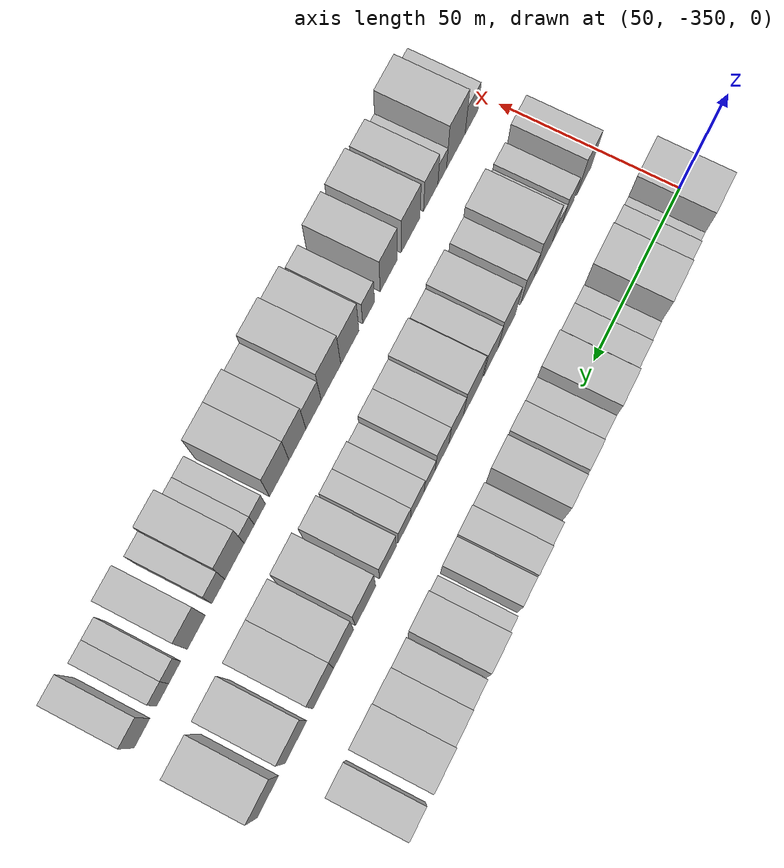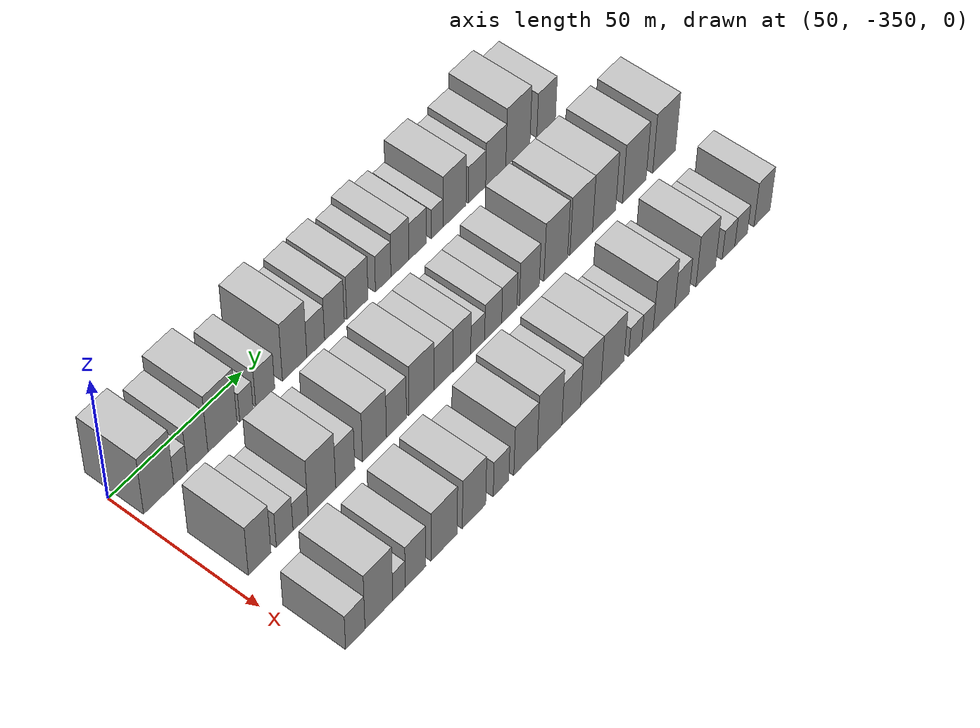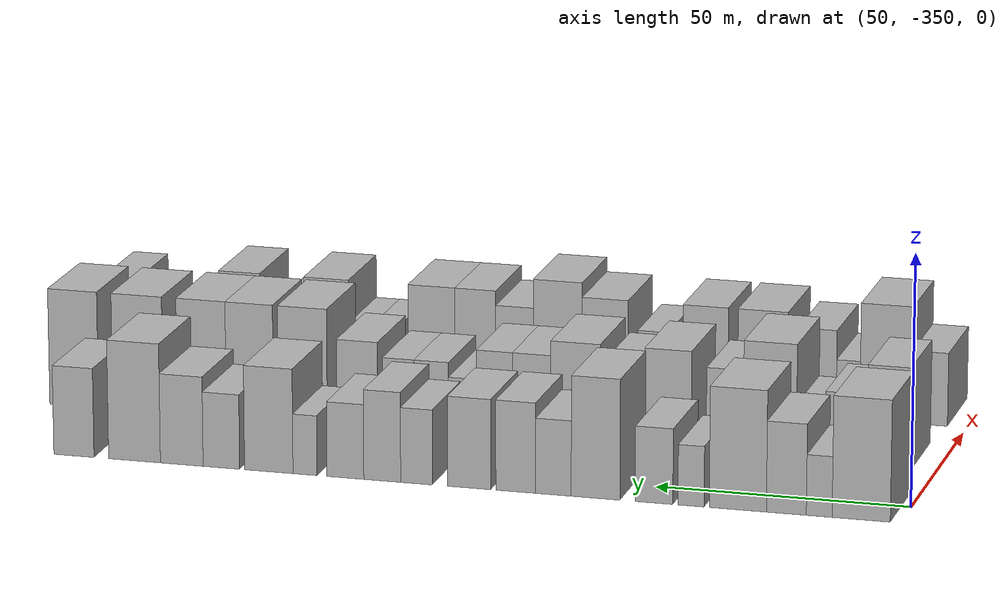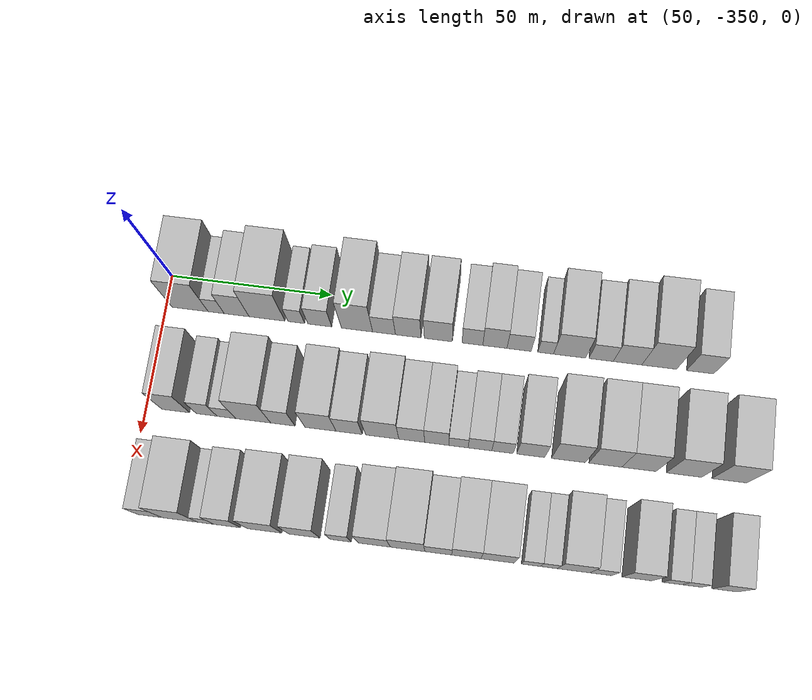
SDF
<sdf version="1.6">
 <world name="default">
  <model name="building_1">
   <static>1</static>
   <pose>50.0000 -342.3890 0 0.000000 0.000000 0.000000</pose>
   <link name="link">
    <pose>0 0 12.00 0 0 0</pose>
    <collision name="collision"><geometry><box><size>20.0000 11.2219 24.0000</size></box></geometry></collision>
    <visual name="visual">
     <cast_shadows>0</cast_shadows>
     <geometry><box><size>20.0000 11.2219 24.0000</size></box></geometry>
     <material>
      <script>
       <uri>model://HANNAS_wall/materials/scripts</uri>
       <uri>model://HANNAS_wall/materials/textures</uri>
       <name>vrc/HANNAS_wall</name>
      </script>
     </material>
    </visual>
   </link>
  </model>
  <model name="building_2">
   <static>1</static>
   <pose>50.0000 -334.2786 0 0.000000 0.000000 0.000000</pose>
   <link name="link">
    <pose>0 0 6.00 0 0 0</pose>
    <collision name="collision"><geometry><box><size>20.0000 4.9989 12.0000</size></box></geometry></collision>
    <visual name="visual">
     <cast_shadows>0</cast_shadows>
     <geometry><box><size>20.0000 4.9989 12.0000</size></box></geometry>
     <material>
      <script>
       <uri>model://HANNAS_wall/materials/scripts</uri>
       <uri>model://HANNAS_wall/materials/textures</uri>
       <name>vrc/HANNAS_wall</name>
      </script>
     </material>
    </visual>
   </link>
  </model>
  <model name="building_3">
   <static>1</static>
   <pose>50.0000 -327.9115 0 0.000000 0.000000 0.000000</pose>
   <link name="link">
    <pose>0 0 9.00 0 0 0</pose>
    <collision name="collision"><geometry><box><size>20.0000 7.7354 18.0000</size></box></geometry></collision>
    <visual name="visual">
     <cast_shadows>0</cast_shadows>
     <geometry><box><size>20.0000 7.7354 18.0000</size></box></geometry>
     <material>
      <script>
       <uri>model://HANNAS_wall/materials/scripts</uri>
       <uri>model://HANNAS_wall/materials/textures</uri>
       <name>vrc/HANNAS_wall</name>
      </script>
     </material>
    </visual>
   </link>
  </model>
  <model name="building_4">
   <static>1</static>
   <pose>50.0000 -318.4822 0 0.000000 0.000000 0.000000</pose>
   <link name="link">
    <pose>0 0 12.00 0 0 0</pose>
    <collision name="collision"><geometry><box><size>20.0000 11.1232 24.0000</size></box></geometry></collision>
    <visual name="visual">
     <cast_shadows>0</cast_shadows>
     <geometry><box><size>20.0000 11.1232 24.0000</size></box></geometry>
     <material>
      <script>
       <uri>model://HANNAS_wall/materials/scripts</uri>
       <uri>model://HANNAS_wall/materials/textures</uri>
       <name>vrc/HANNAS_wall</name>
      </script>
     </material>
    </visual>
   </link>
  </model>
  <model name="building_5">
   <static>1</static>
   <pose>50.0000 -309.3648 0 0.000000 0.000000 0.000000</pose>
   <link name="link">
    <pose>0 0 6.00 0 0 0</pose>
    <collision name="collision"><geometry><box><size>20.0000 5.1116 12.0000</size></box></geometry></collision>
    <visual name="visual">
     <cast_shadows>0</cast_shadows>
     <geometry><box><size>20.0000 5.1116 12.0000</size></box></geometry>
     <material>
      <script>
       <uri>model://HANNAS_wall/materials/scripts</uri>
       <uri>model://HANNAS_wall/materials/textures</uri>
       <name>vrc/HANNAS_wall</name>
      </script>
     </material>
    </visual>
   </link>
  </model>
  <model name="building_6">
   <static>1</static>
   <pose>50.0000 -302.1212 0 0.000000 0.000000 0.000000</pose>
   <link name="link">
    <pose>0 0 7.50 0 0 0</pose>
    <collision name="collision"><geometry><box><size>20.0000 7.3756 15.0000</size></box></geometry></collision>
    <visual name="visual">
     <cast_shadows>0</cast_shadows>
     <geometry><box><size>20.0000 7.3756 15.0000</size></box></geometry>
     <material>
      <script>
       <uri>model://HANNAS_wall/materials/scripts</uri>
       <uri>model://HANNAS_wall/materials/textures</uri>
       <name>vrc/HANNAS_wall</name>
      </script>
     </material>
    </visual>
   </link>
  </model>
  <model name="building_7">
   <static>1</static>
   <pose>50.0000 -290.6306 0 0.000000 0.000000 0.000000</pose>
   <link name="link">
    <pose>0 0 12.00 0 0 0</pose>
    <collision name="collision"><geometry><box><size>20.0000 9.6056 24.0000</size></box></geometry></collision>
    <visual name="visual">
     <cast_shadows>0</cast_shadows>
     <geometry><box><size>20.0000 9.6056 24.0000</size></box></geometry>
     <material>
      <script>
       <uri>model://HANNAS_wall/materials/scripts</uri>
       <uri>model://HANNAS_wall/materials/textures</uri>
       <name>vrc/HANNAS_wall</name>
      </script>
     </material>
    </visual>
   </link>
  </model>
  <model name="building_8">
   <static>1</static>
   <pose>50.0000 -282.3117 0 0.000000 0.000000 0.000000</pose>
   <link name="link">
    <pose>0 0 7.50 0 0 0</pose>
    <collision name="collision"><geometry><box><size>20.0000 7.0321 15.0000</size></box></geometry></collision>
    <visual name="visual">
     <cast_shadows>0</cast_shadows>
     <geometry><box><size>20.0000 7.0321 15.0000</size></box></geometry>
     <material>
      <script>
       <uri>model://HANNAS_wall/materials/scripts</uri>
       <uri>model://HANNAS_wall/materials/textures</uri>
       <name>vrc/HANNAS_wall</name>
      </script>
     </material>
    </visual>
   </link>
  </model>
  <model name="building_9">
   <static>1</static>
   <pose>50.0000 -274.8525 0 0.000000 0.000000 0.000000</pose>
   <link name="link">
    <pose>0 0 9.00 0 0 0</pose>
    <collision name="collision"><geometry><box><size>20.0000 7.8862 18.0000</size></box></geometry></collision>
    <visual name="visual">
     <cast_shadows>0</cast_shadows>
     <geometry><box><size>20.0000 7.8862 18.0000</size></box></geometry>
     <material>
      <script>
       <uri>model://HANNAS_wall/materials/scripts</uri>
       <uri>model://HANNAS_wall/materials/textures</uri>
       <name>vrc/HANNAS_wall</name>
      </script>
     </material>
    </visual>
   </link>
  </model>
  <model name="building_10">
   <static>1</static>
   <pose>50.0000 -265.6022 0 0.000000 0.000000 0.000000</pose>
   <link name="link">
    <pose>0 0 9.00 0 0 0</pose>
    <collision name="collision"><geometry><box><size>20.0000 8.6145 18.0000</size></box></geometry></collision>
    <visual name="visual">
     <cast_shadows>0</cast_shadows>
     <geometry><box><size>20.0000 8.6145 18.0000</size></box></geometry>
     <material>
      <script>
       <uri>model://HANNAS_wall/materials/scripts</uri>
       <uri>model://HANNAS_wall/materials/textures</uri>
       <name>vrc/HANNAS_wall</name>
      </script>
     </material>
    </visual>
   </link>
  </model>
  <model name="building_11">
   <static>1</static>
   <pose>50.0000 -255.1250 0 0.000000 0.000000 0.000000</pose>
   <link name="link">
    <pose>0 0 7.50 0 0 0</pose>
    <collision name="collision"><geometry><box><size>20.0000 6.3397 15.0000</size></box></geometry></collision>
    <visual name="visual">
     <cast_shadows>0</cast_shadows>
     <geometry><box><size>20.0000 6.3397 15.0000</size></box></geometry>
     <material>
      <script>
       <uri>model://HANNAS_wall/materials/scripts</uri>
       <uri>model://HANNAS_wall/materials/textures</uri>
       <name>vrc/HANNAS_wall</name>
      </script>
     </material>
    </visual>
   </link>
  </model>
  <model name="building_12">
   <static>1</static>
   <pose>50.0000 -248.2621 0 0.000000 0.000000 0.000000</pose>
   <link name="link">
    <pose>0 0 9.00 0 0 0</pose>
    <collision name="collision"><geometry><box><size>20.0000 7.3861 18.0000</size></box></geometry></collision>
    <visual name="visual">
     <cast_shadows>0</cast_shadows>
     <geometry><box><size>20.0000 7.3861 18.0000</size></box></geometry>
     <material>
      <script>
       <uri>model://HANNAS_wall/materials/scripts</uri>
       <uri>model://HANNAS_wall/materials/textures</uri>
       <name>vrc/HANNAS_wall</name>
      </script>
     </material>
    </visual>
   </link>
  </model>
  <model name="building_13">
   <static>1</static>
   <pose>50.0000 -240.8687 0 0.000000 0.000000 0.000000</pose>
   <link name="link">
    <pose>0 0 7.50 0 0 0</pose>
    <collision name="collision"><geometry><box><size>20.0000 7.4008 15.0000</size></box></geometry></collision>
    <visual name="visual">
     <cast_shadows>0</cast_shadows>
     <geometry><box><size>20.0000 7.4008 15.0000</size></box></geometry>
     <material>
      <script>
       <uri>model://HANNAS_wall/materials/scripts</uri>
       <uri>model://HANNAS_wall/materials/textures</uri>
       <name>vrc/HANNAS_wall</name>
      </script>
     </material>
    </visual>
   </link>
  </model>
  <model name="building_14">
   <static>1</static>
   <pose>50.0000 -232.7441 0 0.000000 0.000000 0.000000</pose>
   <link name="link">
    <pose>0 0 6.00 0 0 0</pose>
    <collision name="collision"><geometry><box><size>20.0000 4.8483 12.0000</size></box></geometry></collision>
    <visual name="visual">
     <cast_shadows>0</cast_shadows>
     <geometry><box><size>20.0000 4.8483 12.0000</size></box></geometry>
     <material>
      <script>
       <uri>model://HANNAS_wall/materials/scripts</uri>
       <uri>model://HANNAS_wall/materials/textures</uri>
       <name>vrc/HANNAS_wall</name>
      </script>
     </material>
    </visual>
   </link>
  </model>
  <model name="building_15">
   <static>1</static>
   <pose>50.0000 -225.4259 0 0.000000 0.000000 0.000000</pose>
   <link name="link">
    <pose>0 0 10.50 0 0 0</pose>
    <collision name="collision"><geometry><box><size>20.0000 9.7881 21.0000</size></box></geometry></collision>
    <visual name="visual">
     <cast_shadows>0</cast_shadows>
     <geometry><box><size>20.0000 9.7881 21.0000</size></box></geometry>
     <material>
      <script>
       <uri>model://HANNAS_wall/materials/scripts</uri>
       <uri>model://HANNAS_wall/materials/textures</uri>
       <name>vrc/HANNAS_wall</name>
      </script>
     </material>
    </visual>
   </link>
  </model>
  <model name="building_16">
   <static>1</static>
   <pose>50.0000 -215.8226 0 0.000000 0.000000 0.000000</pose>
   <link name="link">
    <pose>0 0 7.50 0 0 0</pose>
    <collision name="collision"><geometry><box><size>20.0000 7.4185 15.0000</size></box></geometry></collision>
    <visual name="visual">
     <cast_shadows>0</cast_shadows>
     <geometry><box><size>20.0000 7.4185 15.0000</size></box></geometry>
     <material>
      <script>
       <uri>model://HANNAS_wall/materials/scripts</uri>
       <uri>model://HANNAS_wall/materials/textures</uri>
       <name>vrc/HANNAS_wall</name>
      </script>
     </material>
    </visual>
   </link>
  </model>
  <model name="building_17">
   <static>1</static>
   <pose>50.0000 -207.7603 0 0.000000 0.000000 0.000000</pose>
   <link name="link">
    <pose>0 0 9.00 0 0 0</pose>
    <collision name="collision"><geometry><box><size>20.0000 8.7060 18.0000</size></box></geometry></collision>
    <visual name="visual">
     <cast_shadows>0</cast_shadows>
     <geometry><box><size>20.0000 8.7060 18.0000</size></box></geometry>
     <material>
      <script>
       <uri>model://HANNAS_wall/materials/scripts</uri>
       <uri>model://HANNAS_wall/materials/textures</uri>
       <name>vrc/HANNAS_wall</name>
      </script>
     </material>
    </visual>
   </link>
  </model>
  <model name="building_18">
   <static>1</static>
   <pose>50.0000 -198.1202 0 0.000000 0.000000 0.000000</pose>
   <link name="link">
    <pose>0 0 12.00 0 0 0</pose>
    <collision name="collision"><geometry><box><size>20.0000 10.5743 24.0000</size></box></geometry></collision>
    <visual name="visual">
     <cast_shadows>0</cast_shadows>
     <geometry><box><size>20.0000 10.5743 24.0000</size></box></geometry>
     <material>
      <script>
       <uri>model://HANNAS_wall/materials/scripts</uri>
       <uri>model://HANNAS_wall/materials/textures</uri>
       <name>vrc/HANNAS_wall</name>
      </script>
     </material>
    </visual>
   </link>
  </model>
  <model name="building_19">
   <static>1</static>
   <pose>50.0000 -185.7097 0 0.000000 0.000000 0.000000</pose>
   <link name="link">
    <pose>0 0 9.00 0 0 0</pose>
    <collision name="collision"><geometry><box><size>20.0000 8.2468 18.0000</size></box></geometry></collision>
    <visual name="visual">
     <cast_shadows>0</cast_shadows>
     <geometry><box><size>20.0000 8.2468 18.0000</size></box></geometry>
     <material>
      <script>
       <uri>model://HANNAS_wall/materials/scripts</uri>
       <uri>model://HANNAS_wall/materials/textures</uri>
       <name>vrc/HANNAS_wall</name>
      </script>
     </material>
    </visual>
   </link>
  </model>
  <model name="building_81">
   <static>1</static>
   <pose>82.0000 -340.7954 0 0.000000 0.000000 0.000000</pose>
   <link name="link">
    <pose>0 0 10.50 0 0 0</pose>
    <collision name="collision"><geometry><box><size>20.0000 8.4092 21.0000</size></box></geometry></collision>
    <visual name="visual">
     <cast_shadows>0</cast_shadows>
     <geometry><box><size>20.0000 8.4092 21.0000</size></box></geometry>
     <material>
      <script>
       <uri>model://HANNAS_wall/materials/scripts</uri>
       <uri>model://HANNAS_wall/materials/textures</uri>
       <name>vrc/HANNAS_wall</name>
      </script>
     </material>
    </visual>
   </link>
  </model>
  <model name="building_82">
   <static>1</static>
   <pose>82.0000 -331.4395 0 0.000000 0.000000 0.000000</pose>
   <link name="link">
    <pose>0 0 7.50 0 0 0</pose>
    <collision name="collision"><geometry><box><size>20.0000 6.3026 15.0000</size></box></geometry></collision>
    <visual name="visual">
     <cast_shadows>0</cast_shadows>
     <geometry><box><size>20.0000 6.3026 15.0000</size></box></geometry>
     <material>
      <script>
       <uri>model://HANNAS_wall/materials/scripts</uri>
       <uri>model://HANNAS_wall/materials/textures</uri>
       <name>vrc/HANNAS_wall</name>
      </script>
     </material>
    </visual>
   </link>
  </model>
  <model name="building_83">
   <static>1</static>
   <pose>82.0000 -325.4299 0 0.000000 0.000000 0.000000</pose>
   <link name="link">
    <pose>0 0 6.00 0 0 0</pose>
    <collision name="collision"><geometry><box><size>20.0000 5.7168 12.0000</size></box></geometry></collision>
    <visual name="visual">
     <cast_shadows>0</cast_shadows>
     <geometry><box><size>20.0000 5.7168 12.0000</size></box></geometry>
     <material>
      <script>
       <uri>model://HANNAS_wall/materials/scripts</uri>
       <uri>model://HANNAS_wall/materials/textures</uri>
       <name>vrc/HANNAS_wall</name>
      </script>
     </material>
    </visual>
   </link>
  </model>
  <model name="building_84">
   <static>1</static>
   <pose>82.0000 -317.2761 0 0.000000 0.000000 0.000000</pose>
   <link name="link">
    <pose>0 0 12.00 0 0 0</pose>
    <collision name="collision"><geometry><box><size>20.0000 10.5909 24.0000</size></box></geometry></collision>
    <visual name="visual">
     <cast_shadows>0</cast_shadows>
     <geometry><box><size>20.0000 10.5909 24.0000</size></box></geometry>
     <material>
      <script>
       <uri>model://HANNAS_wall/materials/scripts</uri>
       <uri>model://HANNAS_wall/materials/textures</uri>
       <name>vrc/HANNAS_wall</name>
      </script>
     </material>
    </visual>
   </link>
  </model>
  <model name="building_85">
   <static>1</static>
   <pose>82.0000 -308.2951 0 0.000000 0.000000 0.000000</pose>
   <link name="link">
    <pose>0 0 9.00 0 0 0</pose>
    <collision name="collision"><geometry><box><size>20.0000 7.3710 18.0000</size></box></geometry></collision>
    <visual name="visual">
     <cast_shadows>0</cast_shadows>
     <geometry><box><size>20.0000 7.3710 18.0000</size></box></geometry>
     <material>
      <script>
       <uri>model://HANNAS_wall/materials/scripts</uri>
       <uri>model://HANNAS_wall/materials/textures</uri>
       <name>vrc/HANNAS_wall</name>
      </script>
     </material>
    </visual>
   </link>
  </model>
  <model name="building_86">
   <static>1</static>
   <pose>82.0000 -296.9072 0 0.000000 0.000000 0.000000</pose>
   <link name="link">
    <pose>0 0 10.50 0 0 0</pose>
    <collision name="collision"><geometry><box><size>20.0000 9.4048 21.0000</size></box></geometry></collision>
    <visual name="visual">
     <cast_shadows>0</cast_shadows>
     <geometry><box><size>20.0000 9.4048 21.0000</size></box></geometry>
     <material>
      <script>
       <uri>model://HANNAS_wall/materials/scripts</uri>
       <uri>model://HANNAS_wall/materials/textures</uri>
       <name>vrc/HANNAS_wall</name>
      </script>
     </material>
    </visual>
   </link>
  </model>
  <model name="building_87">
   <static>1</static>
   <pose>82.0000 -288.2437 0 0.000000 0.000000 0.000000</pose>
   <link name="link">
    <pose>0 0 9.00 0 0 0</pose>
    <collision name="collision"><geometry><box><size>20.0000 7.9222 18.0000</size></box></geometry></collision>
    <visual name="visual">
     <cast_shadows>0</cast_shadows>
     <geometry><box><size>20.0000 7.9222 18.0000</size></box></geometry>
     <material>
      <script>
       <uri>model://HANNAS_wall/materials/scripts</uri>
       <uri>model://HANNAS_wall/materials/textures</uri>
       <name>vrc/HANNAS_wall</name>
      </script>
     </material>
    </visual>
   </link>
  </model>
  <model name="building_88">
   <static>1</static>
   <pose>82.0000 -278.2958 0 0.000000 0.000000 0.000000</pose>
   <link name="link">
    <pose>0 0 10.50 0 0 0</pose>
    <collision name="collision"><geometry><box><size>20.0000 9.9735 21.0000</size></box></geometry></collision>
    <visual name="visual">
     <cast_shadows>0</cast_shadows>
     <geometry><box><size>20.0000 9.9735 21.0000</size></box></geometry>
     <material>
      <script>
       <uri>model://HANNAS_wall/materials/scripts</uri>
       <uri>model://HANNAS_wall/materials/textures</uri>
       <name>vrc/HANNAS_wall</name>
      </script>
     </material>
    </visual>
   </link>
  </model>
  <model name="building_89">
   <static>1</static>
   <pose>82.0000 -269.4172 0 0.000000 0.000000 0.000000</pose>
   <link name="link">
    <pose>0 0 9.00 0 0 0</pose>
    <collision name="collision"><geometry><box><size>20.0000 7.7837 18.0000</size></box></geometry></collision>
    <visual name="visual">
     <cast_shadows>0</cast_shadows>
     <geometry><box><size>20.0000 7.7837 18.0000</size></box></geometry>
     <material>
      <script>
       <uri>model://HANNAS_wall/materials/scripts</uri>
       <uri>model://HANNAS_wall/materials/textures</uri>
       <name>vrc/HANNAS_wall</name>
      </script>
     </material>
    </visual>
   </link>
  </model>
  <model name="building_90">
   <static>1</static>
   <pose>82.0000 -261.8972 0 0.000000 0.000000 0.000000</pose>
   <link name="link">
    <pose>0 0 9.00 0 0 0</pose>
    <collision name="collision"><geometry><box><size>20.0000 7.2563 18.0000</size></box></geometry></collision>
    <visual name="visual">
     <cast_shadows>0</cast_shadows>
     <geometry><box><size>20.0000 7.2563 18.0000</size></box></geometry>
     <material>
      <script>
       <uri>model://HANNAS_wall/materials/scripts</uri>
       <uri>model://HANNAS_wall/materials/textures</uri>
       <name>vrc/HANNAS_wall</name>
      </script>
     </material>
    </visual>
   </link>
  </model>
  <model name="building_91">
   <static>1</static>
   <pose>82.0000 -255.4014 0 0.000000 0.000000 0.000000</pose>
   <link name="link">
    <pose>0 0 6.00 0 0 0</pose>
    <collision name="collision"><geometry><box><size>20.0000 5.7352 12.0000</size></box></geometry></collision>
    <visual name="visual">
     <cast_shadows>0</cast_shadows>
     <geometry><box><size>20.0000 5.7352 12.0000</size></box></geometry>
     <material>
      <script>
       <uri>model://HANNAS_wall/materials/scripts</uri>
       <uri>model://HANNAS_wall/materials/textures</uri>
       <name>vrc/HANNAS_wall</name>
      </script>
     </material>
    </visual>
   </link>
  </model>
  <model name="building_92">
   <static>1</static>
   <pose>82.0000 -248.9934 0 0.000000 0.000000 0.000000</pose>
   <link name="link">
    <pose>0 0 7.50 0 0 0</pose>
    <collision name="collision"><geometry><box><size>20.0000 7.0808 15.0000</size></box></geometry></collision>
    <visual name="visual">
     <cast_shadows>0</cast_shadows>
     <geometry><box><size>20.0000 7.0808 15.0000</size></box></geometry>
     <material>
      <script>
       <uri>model://HANNAS_wall/materials/scripts</uri>
       <uri>model://HANNAS_wall/materials/textures</uri>
       <name>vrc/HANNAS_wall</name>
      </script>
     </material>
    </visual>
   </link>
  </model>
  <model name="building_93">
   <static>1</static>
   <pose>82.0000 -242.2423 0 0.000000 0.000000 0.000000</pose>
   <link name="link">
    <pose>0 0 7.50 0 0 0</pose>
    <collision name="collision"><geometry><box><size>20.0000 6.4214 15.0000</size></box></geometry></collision>
    <visual name="visual">
     <cast_shadows>0</cast_shadows>
     <geometry><box><size>20.0000 6.4214 15.0000</size></box></geometry>
     <material>
      <script>
       <uri>model://HANNAS_wall/materials/scripts</uri>
       <uri>model://HANNAS_wall/materials/textures</uri>
       <name>vrc/HANNAS_wall</name>
      </script>
     </material>
    </visual>
   </link>
  </model>
  <model name="building_94">
   <static>1</static>
   <pose>82.0000 -233.8269 0 0.000000 0.000000 0.000000</pose>
   <link name="link">
    <pose>0 0 9.00 0 0 0</pose>
    <collision name="collision"><geometry><box><size>20.0000 8.4095 18.0000</size></box></geometry></collision>
    <visual name="visual">
     <cast_shadows>0</cast_shadows>
     <geometry><box><size>20.0000 8.4095 18.0000</size></box></geometry>
     <material>
      <script>
       <uri>model://HANNAS_wall/materials/scripts</uri>
       <uri>model://HANNAS_wall/materials/textures</uri>
       <name>vrc/HANNAS_wall</name>
      </script>
     </material>
    </visual>
   </link>
  </model>
  <model name="building_95">
   <static>1</static>
   <pose>82.0000 -222.5557 0 0.000000 0.000000 0.000000</pose>
   <link name="link">
    <pose>0 0 12.00 0 0 0</pose>
    <collision name="collision"><geometry><box><size>20.0000 10.1330 24.0000</size></box></geometry></collision>
    <visual name="visual">
     <cast_shadows>0</cast_shadows>
     <geometry><box><size>20.0000 10.1330 24.0000</size></box></geometry>
     <material>
      <script>
       <uri>model://HANNAS_wall/materials/scripts</uri>
       <uri>model://HANNAS_wall/materials/textures</uri>
       <name>vrc/HANNAS_wall</name>
      </script>
     </material>
    </visual>
   </link>
  </model>
  <model name="building_96">
   <static>1</static>
   <pose>82.0000 -211.5817 0 0.000000 0.000000 0.000000</pose>
   <link name="link">
    <pose>0 0 12.00 0 0 0</pose>
    <collision name="collision"><geometry><box><size>20.0000 9.8149 24.0000</size></box></geometry></collision>
    <visual name="visual">
     <cast_shadows>0</cast_shadows>
     <geometry><box><size>20.0000 9.8149 24.0000</size></box></geometry>
     <material>
      <script>
       <uri>model://HANNAS_wall/materials/scripts</uri>
       <uri>model://HANNAS_wall/materials/textures</uri>
       <name>vrc/HANNAS_wall</name>
      </script>
     </material>
    </visual>
   </link>
  </model>
  <model name="building_97">
   <static>1</static>
   <pose>82.0000 -201.5787 0 0.000000 0.000000 0.000000</pose>
   <link name="link">
    <pose>0 0 12.00 0 0 0</pose>
    <collision name="collision"><geometry><box><size>20.0000 10.1910 24.0000</size></box></geometry></collision>
    <visual name="visual">
     <cast_shadows>0</cast_shadows>
     <geometry><box><size>20.0000 10.1910 24.0000</size></box></geometry>
     <material>
      <script>
       <uri>model://HANNAS_wall/materials/scripts</uri>
       <uri>model://HANNAS_wall/materials/textures</uri>
       <name>vrc/HANNAS_wall</name>
      </script>
     </material>
    </visual>
   </link>
  </model>
  <model name="building_98">
   <static>1</static>
   <pose>82.0000 -188.2115 0 0.000000 0.000000 0.000000</pose>
   <link name="link">
    <pose>0 0 12.00 0 0 0</pose>
    <collision name="collision"><geometry><box><size>20.0000 10.5436 24.0000</size></box></geometry></collision>
    <visual name="visual">
     <cast_shadows>0</cast_shadows>
     <geometry><box><size>20.0000 10.5436 24.0000</size></box></geometry>
     <material>
      <script>
       <uri>model://HANNAS_wall/materials/scripts</uri>
       <uri>model://HANNAS_wall/materials/textures</uri>
       <name>vrc/HANNAS_wall</name>
      </script>
     </material>
    </visual>
   </link>
  </model>
  <model name="building_99">
   <static>1</static>
   <pose>82.0000 -174.8067 0 0.000000 0.000000 0.000000</pose>
   <link name="link">
    <pose>0 0 12.00 0 0 0</pose>
    <collision name="collision"><geometry><box><size>20.0000 10.2660 24.0000</size></box></geometry></collision>
    <visual name="visual">
     <cast_shadows>0</cast_shadows>
     <geometry><box><size>20.0000 10.2660 24.0000</size></box></geometry>
     <material>
      <script>
       <uri>model://HANNAS_wall/materials/scripts</uri>
       <uri>model://HANNAS_wall/materials/textures</uri>
       <name>vrc/HANNAS_wall</name>
      </script>
     </material>
    </visual>
   </link>
  </model>
  <model name="building_157">
   <static>1</static>
   <pose>114.0000 -342.3721 0 0.000000 0.000000 0.000000</pose>
   <link name="link">
    <pose>0 0 7.50 0 0 0</pose>
    <collision name="collision"><geometry><box><size>20.0000 7.2557 15.0000</size></box></geometry></collision>
    <visual name="visual">
     <cast_shadows>0</cast_shadows>
     <geometry><box><size>20.0000 7.2557 15.0000</size></box></geometry>
     <material>
      <script>
       <uri>model://HANNAS_wall/materials/scripts</uri>
       <uri>model://HANNAS_wall/materials/textures</uri>
       <name>vrc/HANNAS_wall</name>
      </script>
     </material>
    </visual>
   </link>
  </model>
  <model name="building_158">
   <static>1</static>
   <pose>114.0000 -333.5051 0 0.000000 0.000000 0.000000</pose>
   <link name="link">
    <pose>0 0 12.00 0 0 0</pose>
    <collision name="collision"><geometry><box><size>20.0000 10.4784 24.0000</size></box></geometry></collision>
    <visual name="visual">
     <cast_shadows>0</cast_shadows>
     <geometry><box><size>20.0000 10.4784 24.0000</size></box></geometry>
     <material>
      <script>
       <uri>model://HANNAS_wall/materials/scripts</uri>
       <uri>model://HANNAS_wall/materials/textures</uri>
       <name>vrc/HANNAS_wall</name>
      </script>
     </material>
    </visual>
   </link>
  </model>
  <model name="building_159">
   <static>1</static>
   <pose>114.0000 -325.8617 0 0.000000 0.000000 0.000000</pose>
   <link name="link">
    <pose>0 0 6.00 0 0 0</pose>
    <collision name="collision"><geometry><box><size>20.0000 4.8084 12.0000</size></box></geometry></collision>
    <visual name="visual">
     <cast_shadows>0</cast_shadows>
     <geometry><box><size>20.0000 4.8084 12.0000</size></box></geometry>
     <material>
      <script>
       <uri>model://HANNAS_wall/materials/scripts</uri>
       <uri>model://HANNAS_wall/materials/textures</uri>
       <name>vrc/HANNAS_wall</name>
      </script>
     </material>
    </visual>
   </link>
  </model>
  <model name="building_160">
   <static>1</static>
   <pose>114.0000 -319.4997 0 0.000000 0.000000 0.000000</pose>
   <link name="link">
    <pose>0 0 9.00 0 0 0</pose>
    <collision name="collision"><geometry><box><size>20.0000 7.9158 18.0000</size></box></geometry></collision>
    <visual name="visual">
     <cast_shadows>0</cast_shadows>
     <geometry><box><size>20.0000 7.9158 18.0000</size></box></geometry>
     <material>
      <script>
       <uri>model://HANNAS_wall/materials/scripts</uri>
       <uri>model://HANNAS_wall/materials/textures</uri>
       <name>vrc/HANNAS_wall</name>
      </script>
     </material>
    </visual>
   </link>
  </model>
  <model name="building_161">
   <static>1</static>
   <pose>114.0000 -308.4448 0 0.000000 0.000000 0.000000</pose>
   <link name="link">
    <pose>0 0 10.50 0 0 0</pose>
    <collision name="collision"><geometry><box><size>20.0000 10.1939 21.0000</size></box></geometry></collision>
    <visual name="visual">
     <cast_shadows>0</cast_shadows>
     <geometry><box><size>20.0000 10.1939 21.0000</size></box></geometry>
     <material>
      <script>
       <uri>model://HANNAS_wall/materials/scripts</uri>
       <uri>model://HANNAS_wall/materials/textures</uri>
       <name>vrc/HANNAS_wall</name>
      </script>
     </material>
    </visual>
   </link>
  </model>
  <model name="building_162">
   <static>1</static>
   <pose>114.0000 -296.7150 0 0.000000 0.000000 0.000000</pose>
   <link name="link">
    <pose>0 0 10.50 0 0 0</pose>
    <collision name="collision"><geometry><box><size>20.0000 9.2657 21.0000</size></box></geometry></collision>
    <visual name="visual">
     <cast_shadows>0</cast_shadows>
     <geometry><box><size>20.0000 9.2657 21.0000</size></box></geometry>
     <material>
      <script>
       <uri>model://HANNAS_wall/materials/scripts</uri>
       <uri>model://HANNAS_wall/materials/textures</uri>
       <name>vrc/HANNAS_wall</name>
      </script>
     </material>
    </visual>
   </link>
  </model>
  <model name="building_163">
   <static>1</static>
   <pose>114.0000 -285.9590 0 0.000000 0.000000 0.000000</pose>
   <link name="link">
    <pose>0 0 7.50 0 0 0</pose>
    <collision name="collision"><geometry><box><size>20.0000 6.2463 15.0000</size></box></geometry></collision>
    <visual name="visual">
     <cast_shadows>0</cast_shadows>
     <geometry><box><size>20.0000 6.2463 15.0000</size></box></geometry>
     <material>
      <script>
       <uri>model://HANNAS_wall/materials/scripts</uri>
       <uri>model://HANNAS_wall/materials/textures</uri>
       <name>vrc/HANNAS_wall</name>
      </script>
     </material>
    </visual>
   </link>
  </model>
  <model name="building_164">
   <static>1</static>
   <pose>114.0000 -276.0854 0 0.000000 0.000000 0.000000</pose>
   <link name="link">
    <pose>0 0 10.50 0 0 0</pose>
    <collision name="collision"><geometry><box><size>20.0000 9.5008 21.0000</size></box></geometry></collision>
    <visual name="visual">
     <cast_shadows>0</cast_shadows>
     <geometry><box><size>20.0000 9.5008 21.0000</size></box></geometry>
     <material>
      <script>
       <uri>model://HANNAS_wall/materials/scripts</uri>
       <uri>model://HANNAS_wall/materials/textures</uri>
       <name>vrc/HANNAS_wall</name>
      </script>
     </material>
    </visual>
   </link>
  </model>
  <model name="building_165">
   <static>1</static>
   <pose>114.0000 -266.2824 0 0.000000 0.000000 0.000000</pose>
   <link name="link">
    <pose>0 0 12.00 0 0 0</pose>
    <collision name="collision"><geometry><box><size>20.0000 10.1050 24.0000</size></box></geometry></collision>
    <visual name="visual">
     <cast_shadows>0</cast_shadows>
     <geometry><box><size>20.0000 10.1050 24.0000</size></box></geometry>
     <material>
      <script>
       <uri>model://HANNAS_wall/materials/scripts</uri>
       <uri>model://HANNAS_wall/materials/textures</uri>
       <name>vrc/HANNAS_wall</name>
      </script>
     </material>
    </visual>
   </link>
  </model>
  <model name="building_166">
   <static>1</static>
   <pose>114.0000 -257.3146 0 0.000000 0.000000 0.000000</pose>
   <link name="link">
    <pose>0 0 9.00 0 0 0</pose>
    <collision name="collision"><geometry><box><size>20.0000 7.8306 18.0000</size></box></geometry></collision>
    <visual name="visual">
     <cast_shadows>0</cast_shadows>
     <geometry><box><size>20.0000 7.8306 18.0000</size></box></geometry>
     <material>
      <script>
       <uri>model://HANNAS_wall/materials/scripts</uri>
       <uri>model://HANNAS_wall/materials/textures</uri>
       <name>vrc/HANNAS_wall</name>
      </script>
     </material>
    </visual>
   </link>
  </model>
  <model name="building_167">
   <static>1</static>
   <pose>114.0000 -249.1330 0 0.000000 0.000000 0.000000</pose>
   <link name="link">
    <pose>0 0 10.50 0 0 0</pose>
    <collision name="collision"><geometry><box><size>20.0000 8.5327 21.0000</size></box></geometry></collision>
    <visual name="visual">
     <cast_shadows>0</cast_shadows>
     <geometry><box><size>20.0000 8.5327 21.0000</size></box></geometry>
     <material>
      <script>
       <uri>model://HANNAS_wall/materials/scripts</uri>
       <uri>model://HANNAS_wall/materials/textures</uri>
       <name>vrc/HANNAS_wall</name>
      </script>
     </material>
    </visual>
   </link>
  </model>
  <model name="building_168">
   <static>1</static>
   <pose>114.0000 -239.9743 0 0.000000 0.000000 0.000000</pose>
   <link name="link">
    <pose>0 0 10.50 0 0 0</pose>
    <collision name="collision"><geometry><box><size>20.0000 9.7846 21.0000</size></box></geometry></collision>
    <visual name="visual">
     <cast_shadows>0</cast_shadows>
     <geometry><box><size>20.0000 9.7846 21.0000</size></box></geometry>
     <material>
      <script>
       <uri>model://HANNAS_wall/materials/scripts</uri>
       <uri>model://HANNAS_wall/materials/textures</uri>
       <name>vrc/HANNAS_wall</name>
      </script>
     </material>
    </visual>
   </link>
  </model>
  <model name="building_169">
   <static>1</static>
   <pose>114.0000 -230.3144 0 0.000000 0.000000 0.000000</pose>
   <link name="link">
    <pose>0 0 6.00 0 0 0</pose>
    <collision name="collision"><geometry><box><size>20.0000 5.5351 12.0000</size></box></geometry></collision>
    <visual name="visual">
     <cast_shadows>0</cast_shadows>
     <geometry><box><size>20.0000 5.5351 12.0000</size></box></geometry>
     <material>
      <script>
       <uri>model://HANNAS_wall/materials/scripts</uri>
       <uri>model://HANNAS_wall/materials/textures</uri>
       <name>vrc/HANNAS_wall</name>
      </script>
     </material>
    </visual>
   </link>
  </model>
  <model name="building_170">
   <static>1</static>
   <pose>114.0000 -225.0647 0 0.000000 0.000000 0.000000</pose>
   <link name="link">
    <pose>0 0 6.00 0 0 0</pose>
    <collision name="collision"><geometry><box><size>20.0000 4.9644 12.0000</size></box></geometry></collision>
    <visual name="visual">
     <cast_shadows>0</cast_shadows>
     <geometry><box><size>20.0000 4.9644 12.0000</size></box></geometry>
     <material>
      <script>
       <uri>model://HANNAS_wall/materials/scripts</uri>
       <uri>model://HANNAS_wall/materials/textures</uri>
       <name>vrc/HANNAS_wall</name>
      </script>
     </material>
    </visual>
   </link>
  </model>
  <model name="building_171">
   <static>1</static>
   <pose>114.0000 -217.8764 0 0.000000 0.000000 0.000000</pose>
   <link name="link">
    <pose>0 0 10.50 0 0 0</pose>
    <collision name="collision"><geometry><box><size>20.0000 9.4121 21.0000</size></box></geometry></collision>
    <visual name="visual">
     <cast_shadows>0</cast_shadows>
     <geometry><box><size>20.0000 9.4121 21.0000</size></box></geometry>
     <material>
      <script>
       <uri>model://HANNAS_wall/materials/scripts</uri>
       <uri>model://HANNAS_wall/materials/textures</uri>
       <name>vrc/HANNAS_wall</name>
      </script>
     </material>
    </visual>
   </link>
  </model>
  <model name="building_172">
   <static>1</static>
   <pose>114.0000 -210.0015 0 0.000000 0.000000 0.000000</pose>
   <link name="link">
    <pose>0 0 7.50 0 0 0</pose>
    <collision name="collision"><geometry><box><size>20.0000 6.3378 15.0000</size></box></geometry></collision>
    <visual name="visual">
     <cast_shadows>0</cast_shadows>
     <geometry><box><size>20.0000 6.3378 15.0000</size></box></geometry>
     <material>
      <script>
       <uri>model://HANNAS_wall/materials/scripts</uri>
       <uri>model://HANNAS_wall/materials/textures</uri>
       <name>vrc/HANNAS_wall</name>
      </script>
     </material>
    </visual>
   </link>
  </model>
  <model name="building_173">
   <static>1</static>
   <pose>114.0000 -199.4868 0 0.000000 0.000000 0.000000</pose>
   <link name="link">
    <pose>0 0 10.50 0 0 0</pose>
    <collision name="collision"><geometry><box><size>20.0000 8.6916 21.0000</size></box></geometry></collision>
    <visual name="visual">
     <cast_shadows>0</cast_shadows>
     <geometry><box><size>20.0000 8.6916 21.0000</size></box></geometry>
     <material>
      <script>
       <uri>model://HANNAS_wall/materials/scripts</uri>
       <uri>model://HANNAS_wall/materials/textures</uri>
       <name>vrc/HANNAS_wall</name>
      </script>
     </material>
    </visual>
   </link>
  </model>
  <model name="building_174">
   <static>1</static>
   <pose>114.0000 -189.3072 0 0.000000 0.000000 0.000000</pose>
   <link name="link">
    <pose>0 0 6.00 0 0 0</pose>
    <collision name="collision"><geometry><box><size>20.0000 5.6676 12.0000</size></box></geometry></collision>
    <visual name="visual">
     <cast_shadows>0</cast_shadows>
     <geometry><box><size>20.0000 5.6676 12.0000</size></box></geometry>
     <material>
      <script>
       <uri>model://HANNAS_wall/materials/scripts</uri>
       <uri>model://HANNAS_wall/materials/textures</uri>
       <name>vrc/HANNAS_wall</name>
      </script>
     </material>
    </visual>
   </link>
  </model>
  <model name="building_175">
   <static>1</static>
   <pose>114.0000 -183.6229 0 0.000000 0.000000 0.000000</pose>
   <link name="link">
    <pose>0 0 6.00 0 0 0</pose>
    <collision name="collision"><geometry><box><size>20.0000 5.7011 12.0000</size></box></geometry></collision>
    <visual name="visual">
     <cast_shadows>0</cast_shadows>
     <geometry><box><size>20.0000 5.7011 12.0000</size></box></geometry>
     <material>
      <script>
       <uri>model://HANNAS_wall/materials/scripts</uri>
       <uri>model://HANNAS_wall/materials/textures</uri>
       <name>vrc/HANNAS_wall</name>
      </script>
     </material>
    </visual>
   </link>
  </model>
  <model name="building_176">
   <static>1</static>
   <pose>114.0000 -174.0898 0 0.000000 0.000000 0.000000</pose>
   <link name="link">
    <pose>0 0 9.00 0 0 0</pose>
    <collision name="collision"><geometry><box><size>20.0000 7.3650 18.0000</size></box></geometry></collision>
    <visual name="visual">
     <cast_shadows>0</cast_shadows>
     <geometry><box><size>20.0000 7.3650 18.0000</size></box></geometry>
     <material>
      <script>
       <uri>model://HANNAS_wall/materials/scripts</uri>
       <uri>model://HANNAS_wall/materials/textures</uri>
       <name>vrc/HANNAS_wall</name>
      </script>
     </material>
    </visual>
   </link>
  </model>
 </world>
</sdf>
